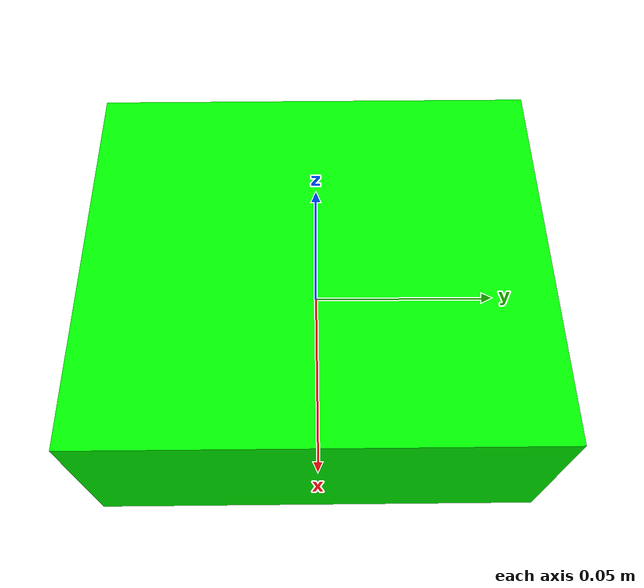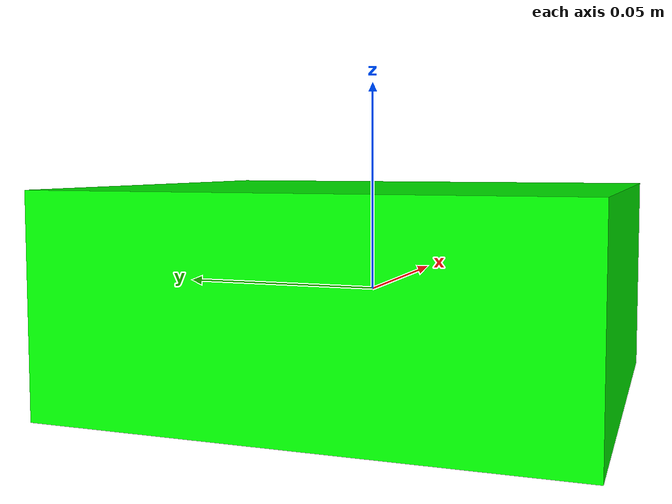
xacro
<?xml version="1.0"?>
<robot xmlns:xacro="http://ros.org/wiki/xacro" name="small_box">

  <!-- Define the dimensions as Xacro properties -->
  <xacro:property name="height" value="0.12"/>
  <xacro:property name="width" value="0.10392"/>
  <xacro:property name="depth" value="0.05"/> <!-- Assuming depth is the same as width for simplicity -->

  <!-- Link for the box -->
  <link name="box_link">
    <visual>
      <geometry>
        <box size="${width} ${height} ${depth}"/>
      </geometry>
      <material name="green">
        <color rgba="0 1 0 1"/> <!-- RGBA for green color, fully opaque -->
      </material>
    </visual>
    <collision>
      <geometry>
        <box size="${width} ${height} ${depth}"/>
      </geometry>
      <surface>
        <friction>
          <ode>
            <mu>0.3</mu>  <!-- Typical friction coefficient for cardboard -->
            <mu2>0.3</mu2>
          </ode>
        </friction>
      </surface>
    </collision>
    <inertial>
      <mass value="0.0005"/> <!-- Assuming some mass for the box -->
      <inertia ixx="0.1" ixy="0" ixz="0" iyy="0.1" iyz="0" izz="0.1"/>
    </inertial>
  </link>

  <gazebo reference="box_link">
    <material>Gazebo/Orange</material>
  </gazebo>
</robot>
